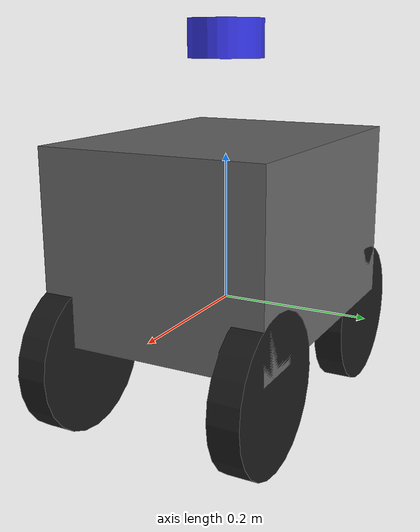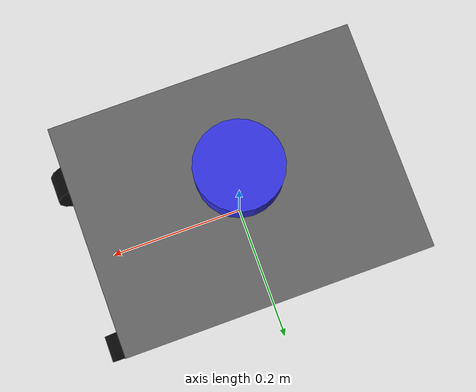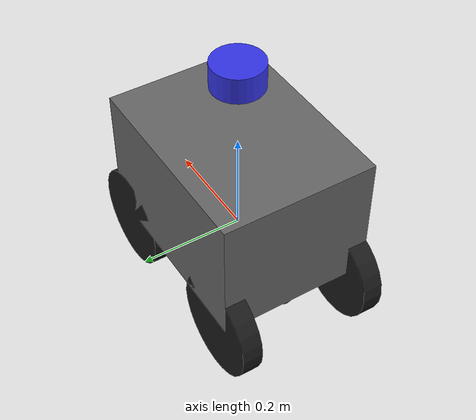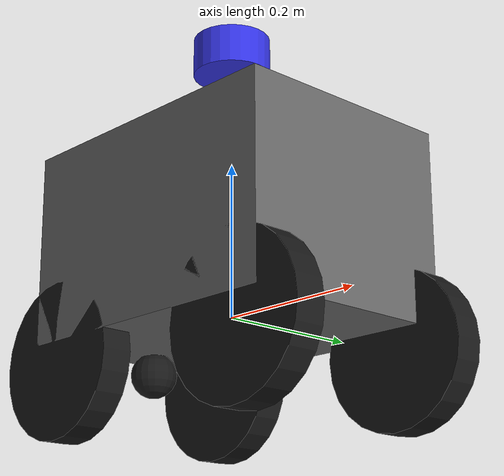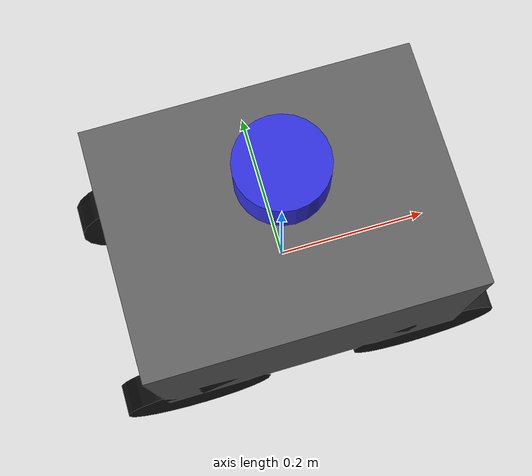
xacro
<?xml version="1.0"?>
<robot xmlns:xacro="http://www.ros.org/wiki/xacro" name="agv">
  <!--
    Planar omnidirectional navigation AGV for nav_sim.
    Stack-agnostic: publishes /scan, /odom, TF. Swap in your own URDF here
    without touching anything else in this package.
  -->
  <!-- Body shrunk to 40 x 30 cm (from 60 x 50). Height and wheel radius stay
       so the spawn height / wheel-ground contact geometry does not change. -->
  <xacro:property name="base_length" value="0.40"/>
  <xacro:property name="base_width"  value="0.30"/>
  <xacro:property name="base_height" value="0.25"/>
  <xacro:property name="wheel_radius" value="0.10"/>
  <xacro:property name="wheel_width"  value="0.04"/>
  <xacro:property name="wheelbase" value="0.32"/>
  <xacro:property name="track_width" value="0.26"/>

  <!-- base_footprint: standard Nav2 footprint frame (odom -> base_footprint -> base_link) -->
  <link name="base_footprint"/>
  <joint name="base_footprint_joint" type="fixed">
    <parent link="base_footprint"/>
    <child link="base_link"/>
    <origin xyz="0 0 0.05" rpy="0 0 0"/>
  </joint>

  <!-- base_link -->
  <link name="base_link">
    <inertial>
      <mass value="12.0"/>
      <inertia ixx="0.10" ixy="0.0" ixz="0.0" iyy="0.12" iyz="0.0" izz="0.15"/>
      <origin xyz="0 0 0.05"/>
    </inertial>
    <visual>
      <origin xyz="0 0 0.05" rpy="0 0 0"/>
      <geometry><box size="${base_length} ${base_width} ${base_height}"/></geometry>
      <material name="grey"><color rgba="0.4 0.4 0.4 1.0"/></material>
    </visual>
    <collision>
      <origin xyz="0 0 0.05" rpy="0 0 0"/>
      <geometry><box size="${base_length} ${base_width} ${base_height}"/></geometry>
    </collision>
  </link>

  <!-- Fixed wheel geometry: planar_drive_plugin controls the rigid chassis. -->
  <xacro:macro name="mecanum_wheel" params="prefix x y">
    <link name="${prefix}_wheel">
      <inertial>
        <mass value="0.4"/>
        <inertia ixx="0.0003" ixy="0.0" ixz="0.0" iyy="0.0003" iyz="0.0" izz="0.0006"/>
        <origin xyz="0 0 0"/>
      </inertial>
      <visual>
        <origin xyz="0 0 0" rpy="${3.1415926/2} 0 0"/>
        <geometry><cylinder radius="${wheel_radius}" length="${wheel_width}"/></geometry>
        <material name="black"><color rgba="0.1 0.1 0.1 1.0"/></material>
      </visual>
      <collision>
        <origin xyz="0 0 0" rpy="${3.1415926/2} 0 0"/>
        <geometry><cylinder radius="${wheel_radius}" length="${wheel_width}"/></geometry>
      </collision>
    </link>
    <joint name="${prefix}_wheel_joint" type="fixed">
      <parent link="base_link"/>
      <child link="${prefix}_wheel"/>
      <origin xyz="${x} ${y} -${wheel_radius}" rpy="0 0 0"/>
    </joint>
    <gazebo reference="${prefix}_wheel">
      <mu1>0.01</mu1>
      <mu2>0.01</mu2>
    </gazebo>
  </xacro:macro>

  <xacro:mecanum_wheel prefix="front_left"  x="${ wheelbase/2}" y="${ track_width/2}"/>
  <xacro:mecanum_wheel prefix="front_right" x="${ wheelbase/2}" y="${-track_width/2}"/>
  <xacro:mecanum_wheel prefix="rear_left"   x="${-wheelbase/2}" y="${ track_width/2}"/>
  <xacro:mecanum_wheel prefix="rear_right"  x="${-wheelbase/2}" y="${-track_width/2}"/>

  <!-- caster (passive ball) -->
  <link name="caster_link">
    <inertial>
      <mass value="0.1"/>
      <inertia ixx="0.0001" ixy="0.0" ixz="0.0" iyy="0.0001" iyz="0.0" izz="0.0001"/>
    </inertial>
    <visual>
      <origin xyz="0 0 0"/>
      <geometry><sphere radius="0.03"/></geometry>
      <material name="black"><color rgba="0.1 0.1 0.1 1.0"/></material>
    </visual>
    <collision>
      <origin xyz="0 0 0"/>
      <geometry><sphere radius="0.03"/></geometry>
    </collision>
  </link>
  <joint name="caster_joint" type="fixed">
    <parent link="base_link"/>
    <child link="caster_link"/>
    <origin xyz="-${base_length/2 - 0.05} 0 -${wheel_radius}" rpy="0 0 0"/>
  </joint>

  <!-- 2D lidar on top -->
  <link name="lidar_link">
    <visual>
      <geometry><cylinder radius="0.05" length="0.05"/></geometry>
      <material name="blue"><color rgba="0.2 0.2 0.9 1.0"/></material>
    </visual>
    <collision>
      <geometry><cylinder radius="0.05" length="0.05"/></geometry>
    </collision>
  </link>
  <joint name="lidar_joint" type="fixed">
    <parent link="base_link"/>
    <child link="lidar_link"/>
    <origin xyz="0 0 ${base_height + 0.05}" rpy="0 0 0"/>
  </joint>

  <!-- RGB-D camera (front) -->
  <link name="camera_link"/>
  <joint name="camera_joint" type="fixed">
    <parent link="base_link"/>
    <child link="camera_link"/>
    <origin xyz="${base_length/2 - 0.02} 0 ${base_height}" rpy="0 0 0"/>
  </joint>

  <!-- Gazebo plugins: planar drive, lidar, camera -->
  <gazebo reference="base_link">
    <material>Gazebo/Grey</material>
    <gravity>true</gravity>
  </gazebo>

  <gazebo reference="caster_link">
    <mu1>0.01</mu1>
    <mu2>0.01</mu2>
  </gazebo>

  <gazebo>
    <plugin name="planar_drive" filename="libplanar_drive_plugin.so">
      <ros>
        <remapping>cmd_vel:=/cmd_vel</remapping>
        <remapping>odom:=/odom</remapping>
      </ros>
      <odom_frame>odom</odom_frame>
      <robot_base_frame>base_footprint</robot_base_frame>
      <cmd_vel_timeout>0.5</cmd_vel_timeout>
      <publish_rate>50.0</publish_rate>
    </plugin>
  </gazebo>

  <gazebo reference="lidar_link">
    <sensor type="ray" name="lidar_2d">
      <pose>0 0 0 0 0 0</pose>
      <visualize>true</visualize>
      <update_rate>10.0</update_rate>
      <ray>
        <scan>
          <horizontal>
            <samples>360</samples>
            <resolution>1</resolution>
            <min_angle>-3.1415926</min_angle>
            <max_angle>3.1415926</max_angle>
          </horizontal>
        </scan>
        <range>
          <min>0.12</min>
          <max>30.0</max>
          <resolution>0.01</resolution>
        </range>
      </ray>
      <plugin name="lidar_2d_plugin" filename="libgazebo_ros_ray_sensor.so">
        <ros>
          <remapping>/lidar_2d_plugin/out:=/scan</remapping>
        </ros>
        <output_type>sensor_msgs/LaserScan</output_type>
        <frame_name>lidar_link</frame_name>
      </plugin>
    </sensor>
  </gazebo>

  <gazebo reference="camera_link">
    <sensor type="depth" name="camera_depth">
      <update_rate>5.0</update_rate>
      <camera>
        <horizontal_fov>1.3962634</horizontal_fov>
        <image><width>640</width><height>480</height></image>
        <clip><near>0.1</near><far>20.0</far></clip>
      </camera>
      <plugin name="camera_depth_plugin" filename="libgazebo_ros_camera.so">
        <ros>
          <remapping>image_raw:=/camera/depth/image_raw</remapping>
          <remapping>camera_info:=/camera/depth/camera_info</remapping>
        </ros>
        <frame_name>camera_link</frame_name>
      </plugin>
    </sensor>
  </gazebo>

  <gazebo reference="camera_link">
    <sensor type="camera" name="camera_color">
      <update_rate>5.0</update_rate>
      <camera>
        <horizontal_fov>1.3962634</horizontal_fov>
        <image><width>640</width><height>480</height></image>
        <clip><near>0.1</near><far>20.0</far></clip>
      </camera>
      <plugin name="camera_color_plugin" filename="libgazebo_ros_camera.so">
        <ros>
          <remapping>image_raw:=/camera/color/image_raw</remapping>
          <remapping>camera_info:=/camera/color/camera_info</remapping>
        </ros>
        <frame_name>camera_link</frame_name>
      </plugin>
    </sensor>
  </gazebo>

</robot>
